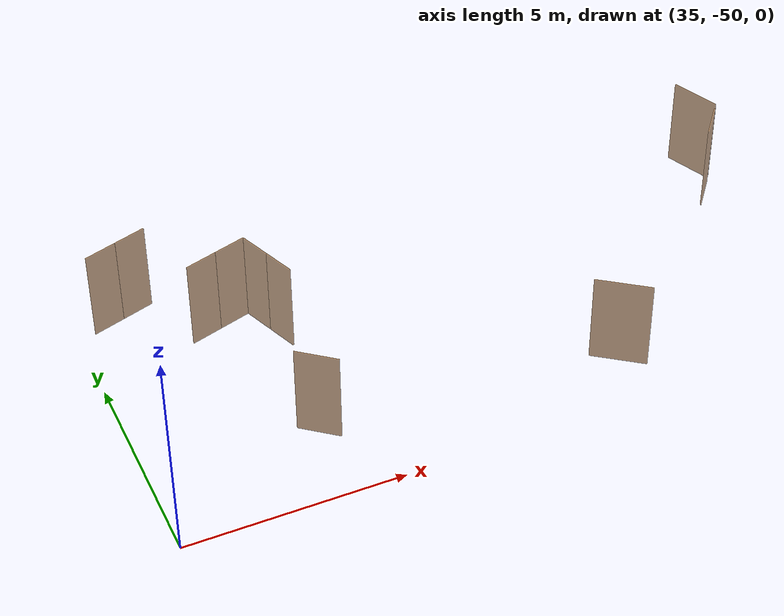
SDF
<sdf version="1.7">
 <world name="world">
  <include><uri>model://sun</uri></include>
  <model name="D7">
   <pose>50.69883278655098 -43.158454476302516 0.0 0 0 -1.1821076421310188</pose>
   <link name="right">
    <pose>0 0 1.11 0 0 0</pose>
    <visual name="right_visual">
     <geometry><box><size>1.2196094655429661 0.03 2.2</size></box></geometry>
     <material><ambient>0.5 0.25 0 0.6</ambient><diffuse>0.5 0.25 0 0.6</diffuse></material>
    </visual>
    <collision name="right_collision">
     <geometry><box><size>1.2196094655429661 0.03 2.2</size></box></geometry>
     <surface><contact><collide_bitmask>0x02</collide_bitmask></contact></surface>
    </collision>
    <inertial>
     <mass>50.0</mass>
     <inertia><ixx>20.17041666666667</ixx><iyy>26.364363535175006</iyy><izz>6.201446868508331</izz></inertia>
    </inertial>
   </link>
   <joint name="right_joint" type="revolute">
    <parent>world</parent>
    <child>right</child>
    <axis><xyz>0 0 1</xyz><limit><lower>0</lower><upper>1.57</upper></limit></axis>
    <pose>0.6148047327714831 0 0 0 0 0</pose>
   </joint>
   <plugin name="door_D7" filename="libdoor.so">
    <v_max_door>0.5</v_max_door>
    <a_max_door>0.3</a_max_door>
    <a_nom_door>0.15</a_nom_door>
    <dx_min_door>0.01</dx_min_door>
    <f_max_door>500.0</f_max_door>
    <door name="D7" type="SwingDoor" left_joint_name="empty_joint" right_joint_name="right_joint"/>
   </plugin>
  </model>
  <model name="D8">
   <pose>50.51688665009196 -44.23738311408482 0.0 0 0 0.8936867215143771</pose>
   <link name="right">
    <pose>0 0 1.11 0 0 0</pose>
    <visual name="right_visual">
     <geometry><box><size>0.958110875327343 0.03 2.2</size></box></geometry>
     <material><ambient>0.5 0.25 0 0.6</ambient><diffuse>0.5 0.25 0 0.6</diffuse></material>
    </visual>
    <collision name="right_collision">
     <geometry><box><size>0.958110875327343 0.03 2.2</size></box></geometry>
     <surface><contact><collide_bitmask>0x02</collide_bitmask></contact></surface>
    </collision>
    <inertial>
     <mass>50.0</mass>
     <inertia><ixx>20.17041666666667</ixx><iyy>23.991568539252203</iyy><izz>3.828651872585531</izz></inertia>
    </inertial>
   </link>
   <joint name="right_joint" type="revolute">
    <parent>world</parent>
    <child>right</child>
    <axis><xyz>0 0 1</xyz><limit><lower>0</lower><upper>1.57</upper></limit></axis>
    <pose>0.4840554376636715 0 0 0 0 0</pose>
   </joint>
   <plugin name="door_D8" filename="libdoor.so">
    <v_max_door>0.5</v_max_door>
    <a_max_door>0.3</a_max_door>
    <a_nom_door>0.15</a_nom_door>
    <dx_min_door>0.01</dx_min_door>
    <f_max_door>500.0</f_max_door>
    <door name="D8" type="SwingDoor" left_joint_name="empty_joint" right_joint_name="right_joint"/>
   </plugin>
  </model>
  <model name="D9">
   <pose>45.727838968862784 -48.67079069311431 0.0 0 0 2.500232906125345</pose>
   <link name="right">
    <pose>0 0 1.11 0 0 0</pose>
    <visual name="right_visual">
     <geometry><box><size>1.3082332286407923 0.03 2.2</size></box></geometry>
     <material><ambient>0.5 0.25 0 0.6</ambient><diffuse>0.5 0.25 0 0.6</diffuse></material>
    </visual>
    <collision name="right_collision">
     <geometry><box><size>1.3082332286407923 0.03 2.2</size></box></geometry>
     <surface><contact><collide_bitmask>0x02</collide_bitmask></contact></surface>
    </collision>
    <inertial>
     <mass>50.0</mass>
     <inertia><ixx>20.17041666666667</ixx><iyy>27.297809085499637</iyy><izz>7.1348924188329645</izz></inertia>
    </inertial>
   </link>
   <joint name="right_joint" type="revolute">
    <parent>world</parent>
    <child>right</child>
    <axis><xyz>0 0 -1</xyz><limit><lower>0</lower><upper>1.57</upper></limit></axis>
    <pose>0.6591166143203961 0 0 0 0 0</pose>
   </joint>
   <plugin name="door_D9" filename="libdoor.so">
    <v_max_door>0.5</v_max_door>
    <a_max_door>0.3</a_max_door>
    <a_nom_door>0.15</a_nom_door>
    <dx_min_door>0.01</dx_min_door>
    <f_max_door>500.0</f_max_door>
    <door name="D9" type="SwingDoor" left_joint_name="empty_joint" right_joint_name="right_joint"/>
   </plugin>
  </model>
  <model name="D43">
   <pose>38.81826797062925 -48.05950403321244 0.0 0 0 2.459885647134354</pose>
   <link name="right">
    <pose>0 0 1.11 0 0 0</pose>
    <visual name="right_visual">
     <geometry><box><size>0.9954269651271266 0.03 2.2</size></box></geometry>
     <material><ambient>0.5 0.25 0 0.6</ambient><diffuse>0.5 0.25 0 0.6</diffuse></material>
    </visual>
    <collision name="right_collision">
     <geometry><box><size>0.9954269651271266 0.03 2.2</size></box></geometry>
     <surface><contact><collide_bitmask>0x02</collide_bitmask></contact></surface>
    </collision>
    <inertial>
     <mass>50.0</mass>
     <inertia><ixx>20.17041666666667</ixx><iyy>24.295311845425847</iyy><izz>4.132395178759174</izz></inertia>
    </inertial>
   </link>
   <joint name="right_joint" type="revolute">
    <parent>world</parent>
    <child>right</child>
    <axis><xyz>0 0 -1</xyz><limit><lower>0</lower><upper>1.57</upper></limit></axis>
    <pose>0.5027134825635633 0 0 0 0 0</pose>
   </joint>
   <plugin name="door_D43" filename="libdoor.so">
    <v_max_door>0.5</v_max_door>
    <a_max_door>0.3</a_max_door>
    <a_nom_door>0.15</a_nom_door>
    <dx_min_door>0.01</dx_min_door>
    <f_max_door>500.0</f_max_door>
    <door name="D43" type="SwingDoor" left_joint_name="empty_joint" right_joint_name="right_joint"/>
   </plugin>
  </model>
  <model name="DH1">
   <pose>36.14462156940682 -42.83422953435475 0.0 0 0 -2.823996757295248</pose>
   <link name="right">
    <pose>0.3941917703005741 0 1.11 0 0 0</pose>
    <visual name="right_visual">
     <geometry><box><size>0.7783835406011482 0.03 2.2</size></box></geometry>
     <material><ambient>0.5 0.25 0 0.6</ambient><diffuse>0.5 0.25 0 0.6</diffuse></material>
    </visual>
    <collision name="right_collision">
     <geometry><box><size>0.7783835406011482 0.03 2.2</size></box></geometry>
     <surface><contact><collide_bitmask>0x02</collide_bitmask></contact></surface>
    </collision>
    <inertial>
     <mass>50.0</mass>
     <inertia><ixx>20.17041666666667</ixx><iyy>22.69117056782825</iyy><izz>2.5282539011615808</izz></inertia>
    </inertial>
   </link>
   <joint name="right_joint" type="revolute">
    <parent>world</parent>
    <child>right</child>
    <axis><xyz>0 0 -1</xyz><limit><lower>0</lower><upper>1.57</upper></limit></axis>
    <pose>0.3941917703005741 0 0 0 0 0</pose>
   </joint>
   <link name="left">
    <pose>-0.3941917703005741 0 1.11 0 0 0</pose>
    <visual name="left_visual">
     <geometry><box><size>0.7783835406011482 0.03 2.2</size></box></geometry>
     <material><ambient>0.5 0.25 0 0.6</ambient><diffuse>0.5 0.25 0 0.6</diffuse></material>
    </visual>
    <collision name="left_collision">
     <geometry><box><size>0.7783835406011482 0.03 2.2</size></box></geometry>
     <surface><contact><collide_bitmask>0x02</collide_bitmask></contact></surface>
    </collision>
    <inertial>
     <mass>50.0</mass>
     <inertia><ixx>20.17041666666667</ixx><iyy>22.69117056782825</iyy><izz>2.5282539011615808</izz></inertia>
    </inertial>
   </link>
   <joint name="left_joint" type="revolute">
    <parent>world</parent>
    <child>left</child>
    <axis><xyz>0 0 -1</xyz><limit><lower>-1.57</lower><upper>0</upper></limit></axis>
    <pose>-0.3941917703005741 0 0 0 0 0</pose>
   </joint>
   <plugin name="door_DH1" filename="libdoor.so">
    <v_max_door>0.5</v_max_door>
    <a_max_door>0.3</a_max_door>
    <a_nom_door>0.15</a_nom_door>
    <dx_min_door>0.01</dx_min_door>
    <f_max_door>500.0</f_max_door>
    <door name="DH1" type="DoubleSwingDoor" left_joint_name="left_joint" right_joint_name="right_joint"/>
   </plugin>
  </model>
  <model name="DH9">
   <pose>39.06589000370187 -44.54055079282025 0.0 0 0 -1.2135244150493012</pose>
   <link name="right">
    <pose>0.38665757287606217 0 1.11 0 0 0</pose>
    <visual name="right_visual">
     <geometry><box><size>0.7633151457521243 0.03 2.2</size></box></geometry>
     <material><ambient>0.5 0.25 0 0.6</ambient><diffuse>0.5 0.25 0 0.6</diffuse></material>
    </visual>
    <collision name="right_collision">
     <geometry><box><size>0.7633151457521243 0.03 2.2</size></box></geometry>
     <surface><contact><collide_bitmask>0x02</collide_bitmask></contact></surface>
    </collision>
    <inertial>
     <mass>50.0</mass>
     <inertia><ixx>20.17041666666667</ixx><iyy>22.594375048894115</iyy><izz>2.4314583822274454</izz></inertia>
    </inertial>
   </link>
   <joint name="right_joint" type="revolute">
    <parent>world</parent>
    <child>right</child>
    <axis><xyz>0 0 -1</xyz><limit><lower>0</lower><upper>1.57</upper></limit></axis>
    <pose>0.38665757287606217 0 0 0 0 0</pose>
   </joint>
   <link name="left">
    <pose>-0.38665757287606217 0 1.11 0 0 0</pose>
    <visual name="left_visual">
     <geometry><box><size>0.7633151457521243 0.03 2.2</size></box></geometry>
     <material><ambient>0.5 0.25 0 0.6</ambient><diffuse>0.5 0.25 0 0.6</diffuse></material>
    </visual>
    <collision name="left_collision">
     <geometry><box><size>0.7633151457521243 0.03 2.2</size></box></geometry>
     <surface><contact><collide_bitmask>0x02</collide_bitmask></contact></surface>
    </collision>
    <inertial>
     <mass>50.0</mass>
     <inertia><ixx>20.17041666666667</ixx><iyy>22.594375048894115</iyy><izz>2.4314583822274454</izz></inertia>
    </inertial>
   </link>
   <joint name="left_joint" type="revolute">
    <parent>world</parent>
    <child>left</child>
    <axis><xyz>0 0 -1</xyz><limit><lower>-1.57</lower><upper>0</upper></limit></axis>
    <pose>-0.38665757287606217 0 0 0 0 0</pose>
   </joint>
   <plugin name="door_DH9" filename="libdoor.so">
    <v_max_door>0.5</v_max_door>
    <a_max_door>0.3</a_max_door>
    <a_nom_door>0.15</a_nom_door>
    <dx_min_door>0.01</dx_min_door>
    <f_max_door>500.0</f_max_door>
    <door name="DH9" type="DoubleSwingDoor" left_joint_name="left_joint" right_joint_name="right_joint"/>
   </plugin>
  </model>
  <model name="DH10">
   <pose>38.05297873166635 -44.04906288713991 0.0 0 0 -2.8375123546000944</pose>
   <link name="right">
    <pose>0.3890839699910378 0 1.11 0 0 0</pose>
    <visual name="right_visual">
     <geometry><box><size>0.7681679399820756 0.03 2.2</size></box></geometry>
     <material><ambient>0.5 0.25 0 0.6</ambient><diffuse>0.5 0.25 0 0.6</diffuse></material>
    </visual>
    <collision name="right_collision">
     <geometry><box><size>0.7681679399820756 0.03 2.2</size></box></geometry>
     <surface><contact><collide_bitmask>0x02</collide_bitmask></contact></surface>
    </collision>
    <inertial>
     <mass>50.0</mass>
     <inertia><ixx>20.17041666666667</ixx><iyy>22.625341600067944</iyy><izz>2.4624249334012736</izz></inertia>
    </inertial>
   </link>
   <joint name="right_joint" type="revolute">
    <parent>world</parent>
    <child>right</child>
    <axis><xyz>0 0 -1</xyz><limit><lower>0</lower><upper>1.57</upper></limit></axis>
    <pose>0.3890839699910378 0 0 0 0 0</pose>
   </joint>
   <link name="left">
    <pose>-0.3890839699910378 0 1.11 0 0 0</pose>
    <visual name="left_visual">
     <geometry><box><size>0.7681679399820756 0.03 2.2</size></box></geometry>
     <material><ambient>0.5 0.25 0 0.6</ambient><diffuse>0.5 0.25 0 0.6</diffuse></material>
    </visual>
    <collision name="left_collision">
     <geometry><box><size>0.7681679399820756 0.03 2.2</size></box></geometry>
     <surface><contact><collide_bitmask>0x02</collide_bitmask></contact></surface>
    </collision>
    <inertial>
     <mass>50.0</mass>
     <inertia><ixx>20.17041666666667</ixx><iyy>22.625341600067944</iyy><izz>2.4624249334012736</izz></inertia>
    </inertial>
   </link>
   <joint name="left_joint" type="revolute">
    <parent>world</parent>
    <child>left</child>
    <axis><xyz>0 0 -1</xyz><limit><lower>-1.57</lower><upper>0</upper></limit></axis>
    <pose>-0.3890839699910378 0 0 0 0 0</pose>
   </joint>
   <plugin name="door_DH10" filename="libdoor.so">
    <v_max_door>0.5</v_max_door>
    <a_max_door>0.3</a_max_door>
    <a_nom_door>0.15</a_nom_door>
    <dx_min_door>0.01</dx_min_door>
    <f_max_door>500.0</f_max_door>
    <door name="DH10" type="DoubleSwingDoor" left_joint_name="left_joint" right_joint_name="right_joint"/>
   </plugin>
  </model>
 </world>
</sdf>
